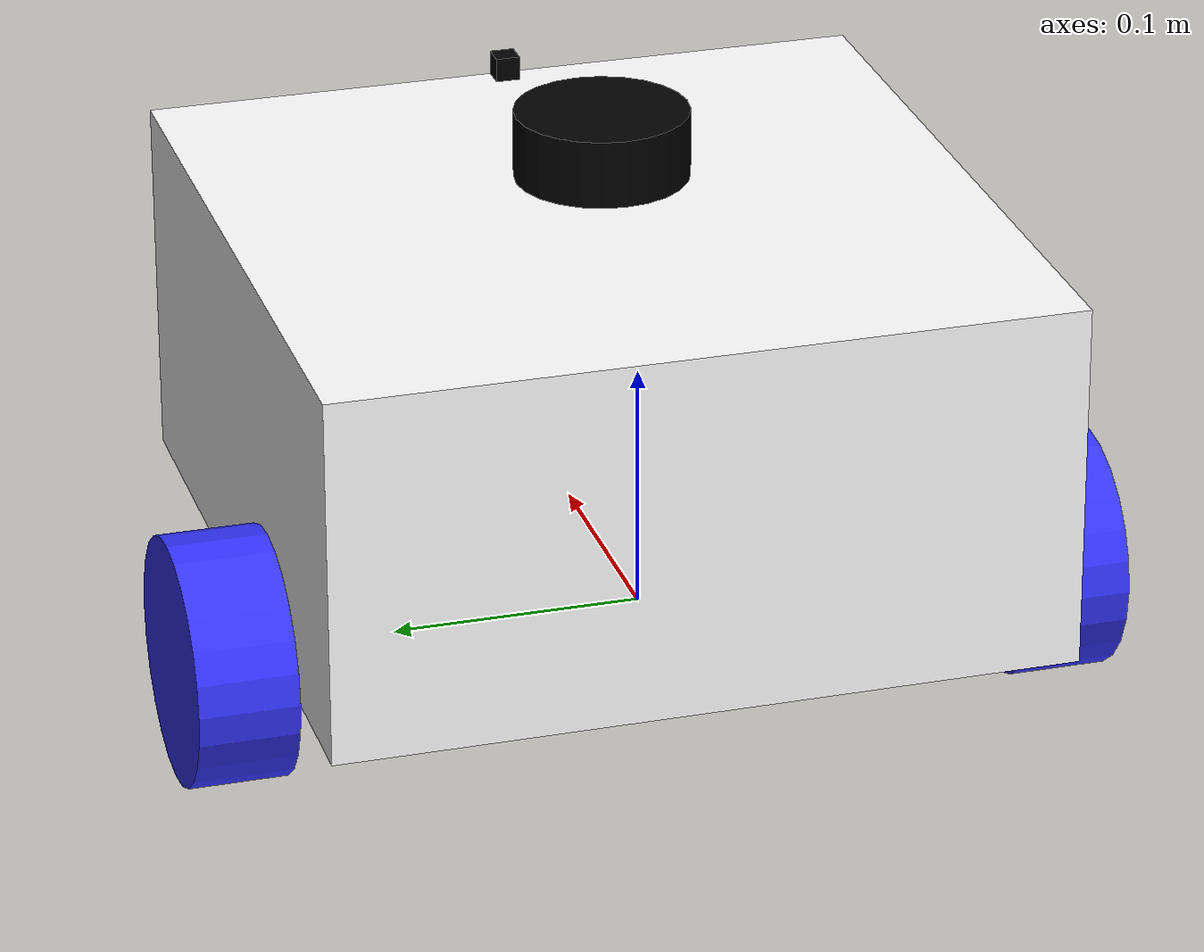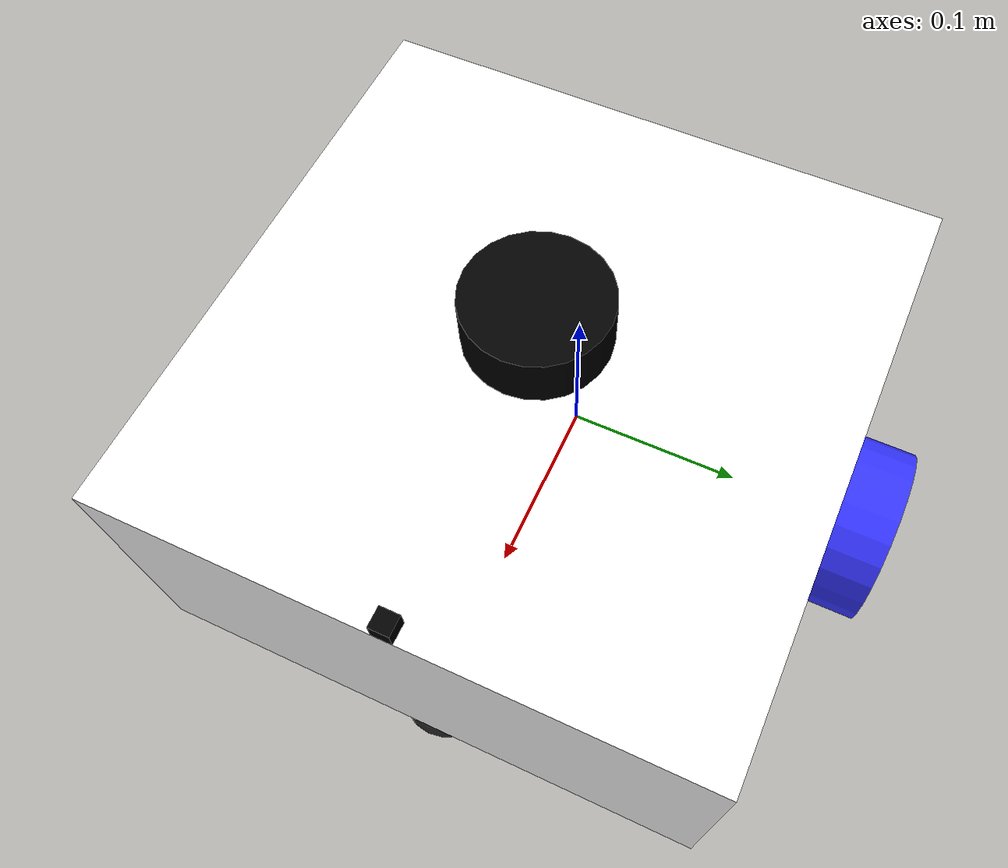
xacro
<?xml version="1.0"?>
<robot xmlns:xacro="http://www.ros.org/wiki/xacro" name="reggiebot">

  <xacro:include filename="reggiebot_core.xacro" />
  <xacro:include filename="reggiebot_lidar.xacro" />
  <xacro:include filename="reggiebot_imu.xacro" />
  <xacro:include filename="reggiebot_gazebo_ros2_control.xacro" />

</robot>

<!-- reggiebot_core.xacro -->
<robot xmlns:xacro="http://www.ros.org/wiki/xacro">

  <xacro:include filename="inertial_macros.xacro" />

  <!-- COLORS -->

  <material name="white">
    <color rgba="1 1 1 1" />
  </material>
  <material name="blue">
    <color rgba="0.2 0.2 1 1" />
  </material>
  <material name="orange">
    <color rgba="1 0.5 0.5 1" />
  </material>
  <material name="black">
    <color rgba="0 0 0 1" />
  </material>
  <material name="grey">
    <color rgba="0.2 0.2 0.2 1" />
  </material>

  <!-- MEASUREMENT INFO -->

  <!-- length = x, width = y, height = z -->
  <xacro:property name="chassis_length" value="0.3" />
  <xacro:property name="chassis_width" value="0.3" />
  <xacro:property name="chassis_height" value="0.15" />

  <xacro:property name="wheel_radius" value="0.05" />
  <xacro:property name="wheel_length" value="0.04" />
  <xacro:property name="caster_radius" value="0.025" />

  <!-- BASE LINK -->

  <link name="base_link" />

  <!-- BASE FOOTPRINT JOINT/LINK -->

  <!-- centered below base_link(center of drive wheels) NOT chassis body -->
  <!-- TODO: make linear z stuck to ground (0), and angular y/x tied to ground (usually 0)) -->
  <!-- -wheel radius so it has the same z as the ground -->
  <joint name="base_footprint_joint" type="fixed">
    <parent link="base_link" />
    <child link="base_footprint" />
    <origin xyz="0 0 ${-wheel_radius}" rpy="0 0 0" />
  </joint>
  <link name="base_footprint" />

  <!-- CHASSIS JOINT/LINK -->

  <!-- The chassis is at the center of the two drive wheels,
       the chassis is half way up (z), 1/6th forward (x)
       this means the drive wheels will be 1/3rd into the chassis (x) -->
  <joint name="chassis_joint" type="fixed">
    <parent link="base_link" />
    <child link="chassis" />
    <origin xyz="${chassis_length/6} 0 ${chassis_height/2}" rpy="0 0 0" />
  </joint>

  <link name="chassis">
    <visual>
      <origin xyz="0 0 0" />
      <geometry>
        <box size="${chassis_length} ${chassis_width} ${chassis_height}" />
      </geometry>
      <material name="white" />
    </visual>
    <collision>
      <origin xyz="0 0 0" />
      <geometry>
        <box size="${chassis_length} ${chassis_width} ${chassis_height}" />
      </geometry>
    </collision>
    <xacro:inertial_box mass="0.5" x="${chassis_length}" y="${chassis_width}"
      z="${chassis_height}">
      <!-- same from collision -->
      <origin xyz="0 0 0" rpy="0 0 0" />
    </xacro:inertial_box>
  </link>
  <gazebo reference="chassis">
    <material>Gazebo/White</material>
  </gazebo>

  <!-- LEFT AND RIGHT WHEEL JOINTS/LINKS -->

  <!-- drive wheel macro -->
  <xacro:macro name="wheel" params="prefix y_reflect">
    <!-- joint is at the center of the wheel -->
    <joint name="${prefix}_wheel_joint" type="continuous">
      <parent link="base_link" />
      <child link="${prefix}_wheel" />
      <origin xyz="0 ${y_reflect*(chassis_width/2 + wheel_length/2)} 0" rpy=" 0 0 0" />
      <axis xyz="0 1 0" />
    </joint>

    <link name="${prefix}_wheel">
      <visual>
        <origin xyz="0 0 0" rpy="${pi/2} 0 0" />
        <geometry>
          <cylinder radius="${wheel_radius}" length="${wheel_length}" />
        </geometry>
        <material name="blue" />
      </visual>
      <collision>
        <origin xyz="0 0 0" rpy="${pi/2} 0 0" />
        <geometry>
          <cylinder radius="${wheel_radius}" length="${wheel_length}" />
        </geometry>
      </collision>
      <xacro:inertial_cylinder mass="0.1" radius="${wheel_radius}" length="${wheel_length}">
        <origin xyz="0 0 0" rpy="${pi/2} 0 0" />
      </xacro:inertial_cylinder>
    </link>

    <gazebo reference="${prefix}_wheel">
      <material>Gazebo/Blue</material>
    </gazebo>
  </xacro:macro>

  <xacro:wheel prefix="left" y_reflect="1" />
  <xacro:wheel prefix="right" y_reflect="-1" />

  <!-- CASTER WHEEL JOINT/LINK -->

  <joint name="caster_wheel_joint" type="fixed">
    <parent link="chassis" />
    <child link="caster_wheel" />
    <origin xyz="${chassis_length/2-caster_radius} 0 ${-chassis_height/2}" rpy=" 0 0 0" />
  </joint>

  <link name="caster_wheel">
    <visual>
      <origin xyz="0 0 ${-wheel_radius+caster_radius}" />
      <geometry>
        <sphere radius="${caster_radius}" />
      </geometry>
      <material name="grey" />
    </visual>
    <collision>
      <origin xyz="0 0 ${-wheel_radius+caster_radius}" />
      <geometry>
        <sphere radius="${caster_radius}" />
      </geometry>
    </collision>
    <xacro:inertial_sphere mass="0.1" radius="${caster_radius}">
      <origin xyz="0 0 ${-wheel_radius+caster_radius}" rpy="0 0 0" />
    </xacro:inertial_sphere>
  </link>
  <gazebo reference="caster_wheel">
    <material>Gazebo/Grey</material>
    <!-- make caster wheel "frictionless" (TODO: for now) -->
    <mu1 value="0.001" />
    <mu2 value="0.001" />
  </gazebo>
</robot>

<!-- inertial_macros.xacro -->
<robot xmlns:xacro="http://www.ros.org/wiki/xacro">

  <!-- Specify some standard inertial calculations
    https://en.wikipedia.org/wiki/List_of_moments_of_inertia -->
  <!-- These make use of xacro's mathematical functionality -->

  <xacro:macro name="inertial_sphere" params="mass radius *origin">
    <inertial>
      <xacro:insert_block name="origin" />
      <mass value="${mass}" />
      <inertia ixx="${(2/5) * mass * (radius*radius)}" ixy="0.0" ixz="0.0"
        iyy="${(2/5) * mass * (radius*radius)}" iyz="0.0"
        izz="${(2/5) * mass * (radius*radius)}" />
    </inertial>
  </xacro:macro>

  <xacro:macro name="inertial_box" params="mass x y z *origin">
    <inertial>
      <xacro:insert_block name="origin" />
      <mass value="${mass}" />
      <inertia ixx="${(1/12) * mass * (y*y+z*z)}" ixy="0.0" ixz="0.0"
        iyy="${(1/12) * mass * (x*x+z*z)}" iyz="0.0"
        izz="${(1/12) * mass * (x*x+y*y)}" />
    </inertial>
  </xacro:macro>

  <xacro:macro name="inertial_cylinder" params="mass length radius *origin">
    <inertial>
      <xacro:insert_block name="origin" />
      <mass value="${mass}" />
      <inertia ixx="${(1/12) * mass * (3*radius*radius + length*length)}" ixy="0.0" ixz="0.0"
        iyy="${(1/12) * mass * (3*radius*radius + length*length)}" iyz="0.0"
        izz="${(1/2) * mass * (radius*radius)}" />
    </inertial>
  </xacro:macro>

</robot>

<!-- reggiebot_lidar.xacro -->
<robot xmlns:xacro="http://www.ros.org/wiki/xacro">

  <!-- rplidar a1m8 -->

  <joint name="laser_joint" type="fixed">
    <parent link="chassis" />
    <child link="laser_frame" />
    <!-- centered on top of chassis, slightly hovering -->
    <origin xyz="0 0 ${chassis_height/2+0.0275}" rpy="0 0 0" />
  </joint>

  <link name="laser_frame">
    <visual>
      <origin xyz="0 0 0" />
      <geometry>
        <cylinder radius="0.035" length="0.0275" />
      </geometry>
      <material name="black" />
    </visual>
    <collision>
      <origin xyz="0 0 0" />
      <geometry>
        <cylinder radius="0.035" length="0.0275" />
      </geometry>
    </collision>
    <xacro:inertial_cylinder mass="0.1" radius="0.035" length="0.0275">
      <origin xyz="0 0 0" rpy="0 0 0" />
    </xacro:inertial_cylinder>
  </link>
  <gazebo reference="laser_frame">
    <material>Gazebo/Black</material>
  </gazebo>

  <!-- gazebo ray sensor with ros plugin -->
  <gazebo reference="laser_frame">
    <sensor name="laser" type="gpu_ray">
      <pose>0 0 0 0 0 0</pose>
      <visualize>false</visualize>
      <update_rate>5.5</update_rate>
      <ray>
        <scan>
          <horizontal>
            <samples>360</samples>
            <resolution>1</resolution>
            <min_angle>-3.14</min_angle>
            <max_angle>3.14</max_angle>
          </horizontal>
        </scan>
        <range>
          <min>0.3</min>
          <max>12</max>
          <resolution>0.1</resolution>
        </range>
        <!-- TODO: config noise -->
      </ray>
      <plugin name="laser_controller" filename="libgazebo_ros_ray_sensor.so">
        <ros>
          <remapping>~/out:=scan</remapping>
        </ros>
        <!-- 2d output -->
        <output_type>sensor_msgs/LaserScan</output_type>
        <frame_name>laser_frame</frame_name>
      </plugin>
    </sensor>
  </gazebo>

</robot>

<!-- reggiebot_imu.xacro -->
<robot xmlns:xacro="http://www.ros.org/wiki/xacro">

  <!-- IMU JOINT/LINK -->
  <!-- front top of chassis-->
  <joint name="imu_joint" type="fixed">
    <origin xyz="${chassis_length/2-0.01/2} 0.0 ${chassis_height/2 + 0.01/2}" />
    <parent link="chassis" />
    <child link="imu" />
  </joint>

  <link name="imu">
    <visual>
      <origin xyz="0 0 0" />
      <geometry>
        <box size="0.01 0.01 0.01" />
      </geometry>
      <material name="black" />
    </visual>
    <collision>
      <origin xyz="0 0 0" />
      <geometry>
        <box size="0.01 0.01 0.01" />
      </geometry>
    </collision>
    <xacro:inertial_box mass="0.001" x="0.01" y="0.01"
      z="0.01">
      <!-- same from collision -->
      <origin xyz="0 0 0" rpy="0 0 0" />
    </xacro:inertial_box>
  </link>
  <gazebo reference="imu">
    <material>Gazebo/Black</material>
  </gazebo>

  <!-- Gazebo imu sensor -->
  <!-- TODO: add noise -->
  <gazebo reference="imu">
    <sensor name="imu_sensor" type="imu">
      <always_on>true</always_on>
      <update_rate>10.0</update_rate>
      <visualize>true</visualize>
    </sensor>
  </gazebo>

</robot>
